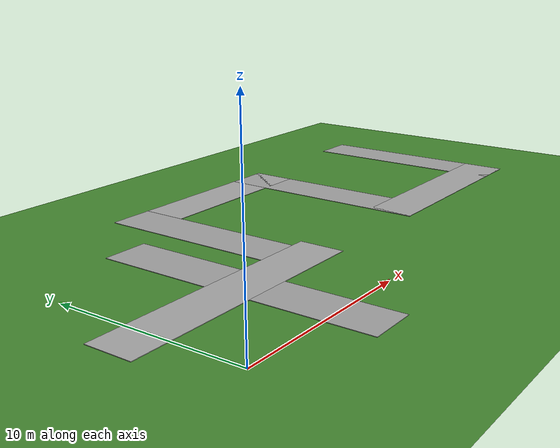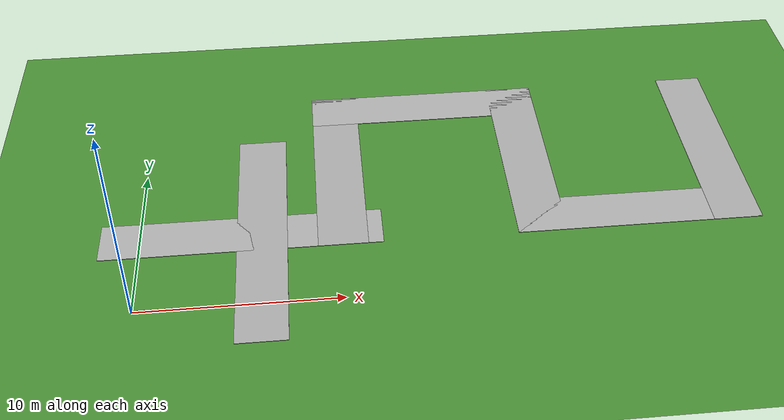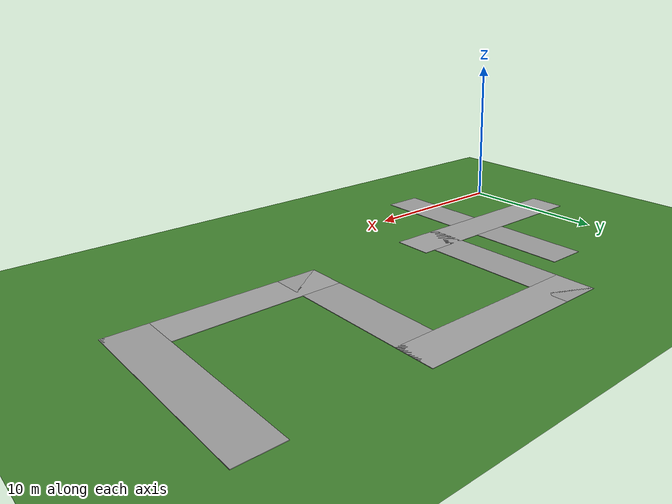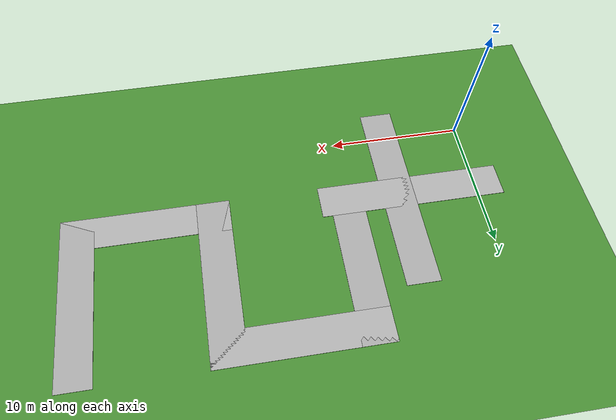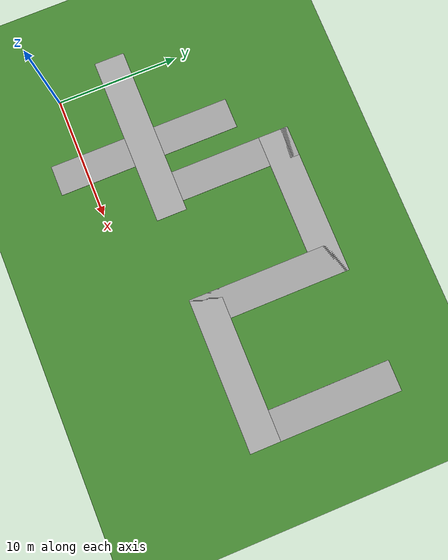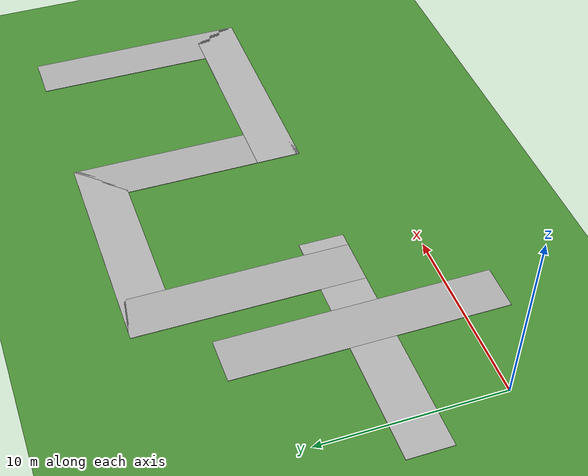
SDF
<sdf version="1.9">
 <world name="person_tracking_approach">
  <physics type="ode">
   <max_step_size>0.004</max_step_size>
   <real_time_update_rate>250</real_time_update_rate>
   <real_time_factor>1.0</real_time_factor>
  </physics>
  <plugin filename="gz-sim-contact-system" name="gz::sim::systems::Contact"/>
  <plugin filename="gz-sim-physics-system" name="gz::sim::systems::Physics"/>
  <plugin filename="gz-sim-sensors-system" name="gz::sim::systems::Sensors">
   <render_engine>ogre2</render_engine>
  </plugin>
  <plugin filename="gz-sim-user-commands-system" name="gz::sim::systems::UserCommands"/>
  <plugin filename="gz-sim-scene-broadcaster-system" name="gz::sim::systems::SceneBroadcaster"/>
  <plugin filename="gz-sim-imu-system" name="gz::sim::systems::Imu"/>
  <plugin filename="gz-sim-magnetometer-system" name="gz::sim::systems::Magnetometer"/>
  <plugin filename="gz-sim-air-pressure-system" name="gz::sim::systems::AirPressure"/>
  <plugin filename="gz-sim-navsat-system" name="gz::sim::systems::NavSat"/>
  <plugin filename="libOpticalFlowSystem.so" name="custom::OpticalFlowSystem"/>
  <gravity>0 0 -9.8</gravity>
  <magnetic_field>6e-06 2.3e-05 -4.2e-05</magnetic_field>
  <atmosphere type="adiabatic"/>
  <wind><linear_velocity>0 0 0</linear_velocity></wind>
  <scene>
   <ambient>0.8 0.8 0.8 1.0</ambient>
   <background>0.7 0.85 1.0 1.0</background>
   <sky><clouds><speed>12</speed></clouds></sky>
  </scene>
  <spherical_coordinates>
   <latitude_deg>47.397742</latitude_deg>
   <longitude_deg>8.545594</longitude_deg>
   <elevation>488.0</elevation>
   <heading_deg>0</heading_deg>
   <surface_model>EARTH_WGS84</surface_model>
  </spherical_coordinates>
  <light type="directional" name="sun">
   <pose>0 0 50 0 0 0</pose>
   <diffuse>0.9 0.9 0.9 1</diffuse>
   <specular>0.8 0.8 0.8 1</specular>
   <attenuation>
    <range>1000</range>
    <constant>0.9</constant>
    <linear>0.01</linear>
    <quadratic>0.001</quadratic>
   </attenuation>
   <direction>-0.4 0.2 -0.9</direction>
  </light>
  <model name="axes">
   <static>1</static>
   <link name="link">
    <visual name="r">
     <cast_shadows>0</cast_shadows>
     <pose>5 0 0.05 0 0 0</pose>
     <geometry><box><size>10 0.05 0.05</size></box></geometry>
     <material><ambient>1 0 0 0.8</ambient><diffuse>1 0 0 0.8</diffuse><emissive>1 0 0 0.8</emissive></material>
    </visual>
    <visual name="g">
     <cast_shadows>0</cast_shadows>
     <pose>0 5 0.05 0 0 0</pose>
     <geometry><box><size>0.05 10 0.05</size></box></geometry>
     <material><ambient>0 1 0 0.8</ambient><diffuse>0 1 0 0.8</diffuse><emissive>0 1 0 0.8</emissive></material>
    </visual>
    <visual name="b">
     <cast_shadows>0</cast_shadows>
     <pose>0 0 5.0 0 0 0</pose>
     <geometry><box><size>0.05 0.05 10</size></box></geometry>
     <material><ambient>0 0 1 0.8</ambient><diffuse>0 0 1 0.8</diffuse><emissive>0 0 1 0.8</emissive></material>
    </visual>
    <sensor name="navsat_sensor" type="navsat"><always_on>1</always_on><update_rate>1</update_rate></sensor>
   </link>
  </model>
  <model name="ground_grass">
   <static>true</static>
   <link name="ground_link">
    <collision name="ground_collision">
     <pose>0 0 -0.05 0 0 0</pose>
     <geometry><box><size>140 140 0.10</size></box></geometry>
     <surface><friction><ode><mu>100</mu><mu2>50</mu2></ode></friction></surface>
    </collision>
    <visual name="ground_visual">
     <geometry><plane><normal>0 0 1</normal><size>140 140</size></plane></geometry>
     <material>
      <ambient>0.22 0.48 0.16 1.0</ambient>
      <diffuse>0.28 0.55 0.20 1.0</diffuse>
      <specular>0.05 0.08 0.05 1.0</specular>
     </material>
    </visual>
   </link>
  </model>
  <model name="park_walkway">
   <static>true</static>
   <link name="walkway_link">
    <visual name="segment_1_visual">
     <pose>5.0 5.0 0.015 0 0 0</pose>
     <geometry><box><size>14.0 2.5 0.03</size></box></geometry>
     <material>
      <ambient>0.62 0.62 0.62 1.0</ambient>
      <diffuse>0.68 0.68 0.68 1.0</diffuse>
      <specular>0.15 0.15 0.15 1.0</specular>
     </material>
    </visual>
    <collision name="segment_1_col">
     <pose>5.0 5.0 0.015 0 0 0</pose>
     <geometry><box><size>14.0 2.5 0.03</size></box></geometry>
    </collision>
    <visual name="cross_segment_visual">
     <pose>6.0 5.0 0.015 0 0 0</pose>
     <geometry><box><size>2.5 15.0 0.03</size></box></geometry>
     <material>
      <ambient>0.60 0.60 0.60 1.0</ambient>
      <diffuse>0.66 0.66 0.66 1.0</diffuse>
      <specular>0.15 0.15 0.15 1.0</specular>
     </material>
    </visual>
    <collision name="cross_segment_col">
     <pose>6.0 5.0 0.015 0 0 0</pose>
     <geometry><box><size>2.5 15.0 0.03</size></box></geometry>
    </collision>
    <visual name="segment_2_visual">
     <pose>10.0 10.0 0.015 0 0 0</pose>
     <geometry><box><size>2.5 12.5 0.03</size></box></geometry>
     <material>
      <ambient>0.60 0.60 0.60 1.0</ambient>
      <diffuse>0.66 0.66 0.66 1.0</diffuse>
      <specular>0.15 0.15 0.15 1.0</specular>
     </material>
    </visual>
    <collision name="segment_2_col">
     <pose>10.0 10.0 0.015 0 0 0</pose>
     <geometry><box><size>2.5 12.5 0.03</size></box></geometry>
    </collision>
    <visual name="segment_3_visual">
     <pose>15.0 15.0 0.015 0 0 0</pose>
     <geometry><box><size>12.5 2.5 0.03</size></box></geometry>
     <material>
      <ambient>0.62 0.62 0.62 1.0</ambient>
      <diffuse>0.68 0.68 0.68 1.0</diffuse>
      <specular>0.15 0.15 0.15 1.0</specular>
     </material>
    </visual>
    <collision name="segment_3_col">
     <pose>15.0 15.0 0.015 0 0 0</pose>
     <geometry><box><size>12.5 2.5 0.03</size></box></geometry>
    </collision>
    <visual name="segment_4_visual">
     <pose>20.0 10.0 0.015 0 0 0</pose>
     <geometry><box><size>2.5 12.5 0.03</size></box></geometry>
     <material>
      <ambient>0.60 0.60 0.60 1.0</ambient>
      <diffuse>0.66 0.66 0.66 1.0</diffuse>
      <specular>0.15 0.15 0.15 1.0</specular>
     </material>
    </visual>
    <collision name="segment_4_col">
     <pose>20.0 10.0 0.015 0 0 0</pose>
     <geometry><box><size>2.5 12.5 0.03</size></box></geometry>
    </collision>
    <visual name="segment_5_visual">
     <pose>25.0 5.0 0.015 0 0 0</pose>
     <geometry><box><size>12.5 2.5 0.03</size></box></geometry>
     <material>
      <ambient>0.62 0.62 0.62 1.0</ambient>
      <diffuse>0.68 0.68 0.68 1.0</diffuse>
      <specular>0.15 0.15 0.15 1.0</specular>
     </material>
    </visual>
    <collision name="segment_5_col">
     <pose>25.0 5.0 0.015 0 0 0</pose>
     <geometry><box><size>12.5 2.5 0.03</size></box></geometry>
    </collision>
    <visual name="segment_6_visual">
     <pose>30.0 10.0 0.015 0 0 0</pose>
     <geometry><box><size>2.5 12.5 0.03</size></box></geometry>
     <material>
      <ambient>0.60 0.60 0.60 1.0</ambient>
      <diffuse>0.66 0.66 0.66 1.0</diffuse>
      <specular>0.15 0.15 0.15 1.0</specular>
     </material>
    </visual>
    <collision name="segment_6_col">
     <pose>30.0 10.0 0.015 0 0 0</pose>
     <geometry><box><size>2.5 12.5 0.03</size></box></geometry>
    </collision>
   </link>
  </model>
 </world>
</sdf>
